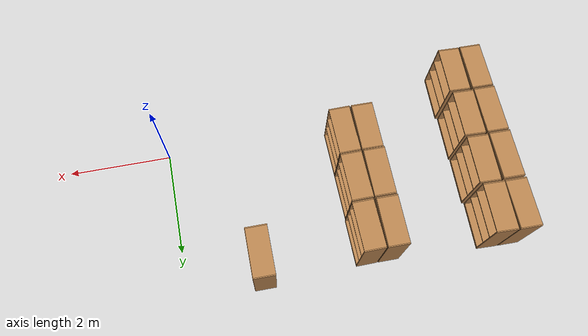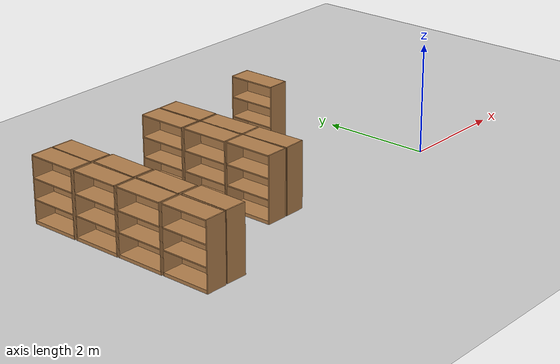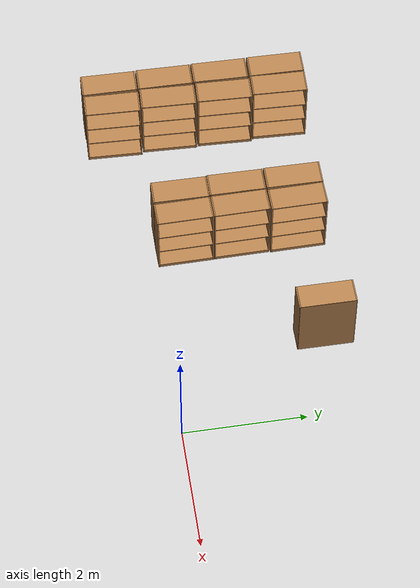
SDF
<sdf version="1.6">
 <world name="default">
  <model name="ground_plane">
   <static>1</static>
   <link name="link">
    <collision name="collision">
     <geometry><plane><normal>0 0 1</normal><size>100 100</size></plane></geometry>
     <surface>
      <contact><collide_bitmask>65535</collide_bitmask></contact>
      <friction><ode><mu>100</mu><mu2>50</mu2></ode></friction>
     </surface>
    </collision>
    <visual name="visual">
     <cast_shadows>0</cast_shadows>
     <geometry><plane><normal>0 0 1</normal><size>100 100</size></plane></geometry>
     <material>
      <script><uri>file://media/materials/scripts/gazebo.material</uri><name>Gazebo/Grey</name></script>
     </material>
    </visual>
   </link>
  </model>
  <model name="bookshelf_clone">
   <static>1</static>
   <link name="link">
    <inertial><mass>1</mass></inertial>
    <collision name="back">
     <pose>0 0.005 0.6 0 -0 0</pose>
     <geometry><box><size>0.9 0.01 1.2</size></box></geometry>
    </collision>
    <visual name="visual1">
     <pose>0 0.005 0.6 0 -0 0</pose>
     <geometry><box><size>0.9 0.01 1.2</size></box></geometry>
     <material>
      <script><uri>file://media/materials/scripts/gazebo.material</uri><name>Gazebo/Wood</name></script>
     </material>
    </visual>
    <collision name="left_side">
     <pose>0.45 -0.195 0.6 0 -0 0</pose>
     <geometry><box><size>0.02 0.4 1.2</size></box></geometry>
    </collision>
    <visual name="visual2">
     <pose>0.45 -0.195 0.6 0 -0 0</pose>
     <geometry><box><size>0.02 0.4 1.2</size></box></geometry>
     <material>
      <script><uri>file://media/materials/scripts/gazebo.material</uri><name>Gazebo/Wood</name></script>
     </material>
    </visual>
    <collision name="right_side">
     <pose>-0.45 -0.195 0.6 0 -0 0</pose>
     <geometry><box><size>0.02 0.4 1.2</size></box></geometry>
    </collision>
    <visual name="visual3">
     <pose>-0.45 -0.195 0.6 0 -0 0</pose>
     <geometry><box><size>0.02 0.4 1.2</size></box></geometry>
     <material>
      <script><uri>file://media/materials/scripts/gazebo.material</uri><name>Gazebo/Wood</name></script>
     </material>
    </visual>
    <collision name="bottom">
     <pose>0 -0.195 0.03 0 -0 0</pose>
     <geometry><box><size>0.88 0.4 0.06</size></box></geometry>
    </collision>
    <visual name="visual4">
     <pose>0 -0.195 0.03 0 -0 0</pose>
     <geometry><box><size>0.88 0.4 0.06</size></box></geometry>
     <material>
      <script><uri>file://media/materials/scripts/gazebo.material</uri><name>Gazebo/Wood</name></script>
     </material>
    </visual>
    <collision name="top">
     <pose>0 -0.195 1.19 0 -0 0</pose>
     <geometry><box><size>0.88 0.4 0.02</size></box></geometry>
    </collision>
    <visual name="visual5">
     <pose>0 -0.195 1.19 0 -0 0</pose>
     <geometry><box><size>0.88 0.4 0.02</size></box></geometry>
     <material>
      <script><uri>file://media/materials/scripts/gazebo.material</uri><name>Gazebo/Wood</name></script>
     </material>
    </visual>
    <collision name="low_shelf">
     <pose>0 -0.195 0.43 0 -0 0</pose>
     <geometry><box><size>0.88 0.4 0.02</size></box></geometry>
    </collision>
    <visual name="visual6">
     <pose>0 -0.195 0.43 0 -0 0</pose>
     <geometry><box><size>0.88 0.4 0.02</size></box></geometry>
     <material>
      <script><uri>file://media/materials/scripts/gazebo.material</uri><name>Gazebo/Wood</name></script>
     </material>
    </visual>
    <collision name="high_shelf">
     <pose>0 -0.195 0.8 0 -0 0</pose>
     <geometry><box><size>0.88 0.4 0.02</size></box></geometry>
    </collision>
    <visual name="visual7">
     <pose>0 -0.195 0.8 0 -0 0</pose>
     <geometry><box><size>0.88 0.4 0.02</size></box></geometry>
     <material>
      <script><uri>file://media/materials/scripts/gazebo.material</uri><name>Gazebo/Wood</name></script>
     </material>
    </visual>
   </link>
   <pose>-6.02073 -0.323633 0 0 0 -1.58271</pose>
  </model>
  <model name="bookshelf_clone_0">
   <static>1</static>
   <link name="link">
    <inertial><mass>1</mass></inertial>
    <collision name="back">
     <pose>0 0.005 0.6 0 -0 0</pose>
     <geometry><box><size>0.9 0.01 1.2</size></box></geometry>
    </collision>
    <visual name="visual1">
     <pose>0 0.005 0.6 0 -0 0</pose>
     <geometry><box><size>0.9 0.01 1.2</size></box></geometry>
     <material>
      <script><uri>file://media/materials/scripts/gazebo.material</uri><name>Gazebo/Wood</name></script>
     </material>
    </visual>
    <collision name="left_side">
     <pose>0.45 -0.195 0.6 0 -0 0</pose>
     <geometry><box><size>0.02 0.4 1.2</size></box></geometry>
    </collision>
    <visual name="visual2">
     <pose>0.45 -0.195 0.6 0 -0 0</pose>
     <geometry><box><size>0.02 0.4 1.2</size></box></geometry>
     <material>
      <script><uri>file://media/materials/scripts/gazebo.material</uri><name>Gazebo/Wood</name></script>
     </material>
    </visual>
    <collision name="right_side">
     <pose>-0.45 -0.195 0.6 0 -0 0</pose>
     <geometry><box><size>0.02 0.4 1.2</size></box></geometry>
    </collision>
    <visual name="visual3">
     <pose>-0.45 -0.195 0.6 0 -0 0</pose>
     <geometry><box><size>0.02 0.4 1.2</size></box></geometry>
     <material>
      <script><uri>file://media/materials/scripts/gazebo.material</uri><name>Gazebo/Wood</name></script>
     </material>
    </visual>
    <collision name="bottom">
     <pose>0 -0.195 0.03 0 -0 0</pose>
     <geometry><box><size>0.88 0.4 0.06</size></box></geometry>
    </collision>
    <visual name="visual4">
     <pose>0 -0.195 0.03 0 -0 0</pose>
     <geometry><box><size>0.88 0.4 0.06</size></box></geometry>
     <material>
      <script><uri>file://media/materials/scripts/gazebo.material</uri><name>Gazebo/Wood</name></script>
     </material>
    </visual>
    <collision name="top">
     <pose>0 -0.195 1.19 0 -0 0</pose>
     <geometry><box><size>0.88 0.4 0.02</size></box></geometry>
    </collision>
    <visual name="visual5">
     <pose>0 -0.195 1.19 0 -0 0</pose>
     <geometry><box><size>0.88 0.4 0.02</size></box></geometry>
     <material>
      <script><uri>file://media/materials/scripts/gazebo.material</uri><name>Gazebo/Wood</name></script>
     </material>
    </visual>
    <collision name="low_shelf">
     <pose>0 -0.195 0.43 0 -0 0</pose>
     <geometry><box><size>0.88 0.4 0.02</size></box></geometry>
    </collision>
    <visual name="visual6">
     <pose>0 -0.195 0.43 0 -0 0</pose>
     <geometry><box><size>0.88 0.4 0.02</size></box></geometry>
     <material>
      <script><uri>file://media/materials/scripts/gazebo.material</uri><name>Gazebo/Wood</name></script>
     </material>
    </visual>
    <collision name="high_shelf">
     <pose>0 -0.195 0.8 0 -0 0</pose>
     <geometry><box><size>0.88 0.4 0.02</size></box></geometry>
    </collision>
    <visual name="visual7">
     <pose>0 -0.195 0.8 0 -0 0</pose>
     <geometry><box><size>0.88 0.4 0.02</size></box></geometry>
     <material>
      <script><uri>file://media/materials/scripts/gazebo.material</uri><name>Gazebo/Wood</name></script>
     </material>
    </visual>
   </link>
   <pose>-6.02068 0.616769 0 0 0 -1.58271</pose>
  </model>
  <model name="bookshelf_clone_1">
   <static>1</static>
   <link name="link">
    <inertial><mass>1</mass></inertial>
    <collision name="back">
     <pose>0 0.005 0.6 0 -0 0</pose>
     <geometry><box><size>0.9 0.01 1.2</size></box></geometry>
    </collision>
    <visual name="visual1">
     <pose>0 0.005 0.6 0 -0 0</pose>
     <geometry><box><size>0.9 0.01 1.2</size></box></geometry>
     <material>
      <script><uri>file://media/materials/scripts/gazebo.material</uri><name>Gazebo/Wood</name></script>
     </material>
    </visual>
    <collision name="left_side">
     <pose>0.45 -0.195 0.6 0 -0 0</pose>
     <geometry><box><size>0.02 0.4 1.2</size></box></geometry>
    </collision>
    <visual name="visual2">
     <pose>0.45 -0.195 0.6 0 -0 0</pose>
     <geometry><box><size>0.02 0.4 1.2</size></box></geometry>
     <material>
      <script><uri>file://media/materials/scripts/gazebo.material</uri><name>Gazebo/Wood</name></script>
     </material>
    </visual>
    <collision name="right_side">
     <pose>-0.45 -0.195 0.6 0 -0 0</pose>
     <geometry><box><size>0.02 0.4 1.2</size></box></geometry>
    </collision>
    <visual name="visual3">
     <pose>-0.45 -0.195 0.6 0 -0 0</pose>
     <geometry><box><size>0.02 0.4 1.2</size></box></geometry>
     <material>
      <script><uri>file://media/materials/scripts/gazebo.material</uri><name>Gazebo/Wood</name></script>
     </material>
    </visual>
    <collision name="bottom">
     <pose>0 -0.195 0.03 0 -0 0</pose>
     <geometry><box><size>0.88 0.4 0.06</size></box></geometry>
    </collision>
    <visual name="visual4">
     <pose>0 -0.195 0.03 0 -0 0</pose>
     <geometry><box><size>0.88 0.4 0.06</size></box></geometry>
     <material>
      <script><uri>file://media/materials/scripts/gazebo.material</uri><name>Gazebo/Wood</name></script>
     </material>
    </visual>
    <collision name="top">
     <pose>0 -0.195 1.19 0 -0 0</pose>
     <geometry><box><size>0.88 0.4 0.02</size></box></geometry>
    </collision>
    <visual name="visual5">
     <pose>0 -0.195 1.19 0 -0 0</pose>
     <geometry><box><size>0.88 0.4 0.02</size></box></geometry>
     <material>
      <script><uri>file://media/materials/scripts/gazebo.material</uri><name>Gazebo/Wood</name></script>
     </material>
    </visual>
    <collision name="low_shelf">
     <pose>0 -0.195 0.43 0 -0 0</pose>
     <geometry><box><size>0.88 0.4 0.02</size></box></geometry>
    </collision>
    <visual name="visual6">
     <pose>0 -0.195 0.43 0 -0 0</pose>
     <geometry><box><size>0.88 0.4 0.02</size></box></geometry>
     <material>
      <script><uri>file://media/materials/scripts/gazebo.material</uri><name>Gazebo/Wood</name></script>
     </material>
    </visual>
    <collision name="high_shelf">
     <pose>0 -0.195 0.8 0 -0 0</pose>
     <geometry><box><size>0.88 0.4 0.02</size></box></geometry>
    </collision>
    <visual name="visual7">
     <pose>0 -0.195 0.8 0 -0 0</pose>
     <geometry><box><size>0.88 0.4 0.02</size></box></geometry>
     <material>
      <script><uri>file://media/materials/scripts/gazebo.material</uri><name>Gazebo/Wood</name></script>
     </material>
    </visual>
   </link>
   <pose>-6.01944 1.55519 0 0 0 -1.58271</pose>
  </model>
  <model name="bookshelf_clone_2">
   <static>1</static>
   <link name="link">
    <inertial><mass>1</mass></inertial>
    <collision name="back">
     <pose>0 0.005 0.6 0 -0 0</pose>
     <geometry><box><size>0.9 0.01 1.2</size></box></geometry>
    </collision>
    <visual name="visual1">
     <pose>0 0.005 0.6 0 -0 0</pose>
     <geometry><box><size>0.9 0.01 1.2</size></box></geometry>
     <material>
      <script><uri>file://media/materials/scripts/gazebo.material</uri><name>Gazebo/Wood</name></script>
     </material>
    </visual>
    <collision name="left_side">
     <pose>0.45 -0.195 0.6 0 -0 0</pose>
     <geometry><box><size>0.02 0.4 1.2</size></box></geometry>
    </collision>
    <visual name="visual2">
     <pose>0.45 -0.195 0.6 0 -0 0</pose>
     <geometry><box><size>0.02 0.4 1.2</size></box></geometry>
     <material>
      <script><uri>file://media/materials/scripts/gazebo.material</uri><name>Gazebo/Wood</name></script>
     </material>
    </visual>
    <collision name="right_side">
     <pose>-0.45 -0.195 0.6 0 -0 0</pose>
     <geometry><box><size>0.02 0.4 1.2</size></box></geometry>
    </collision>
    <visual name="visual3">
     <pose>-0.45 -0.195 0.6 0 -0 0</pose>
     <geometry><box><size>0.02 0.4 1.2</size></box></geometry>
     <material>
      <script><uri>file://media/materials/scripts/gazebo.material</uri><name>Gazebo/Wood</name></script>
     </material>
    </visual>
    <collision name="bottom">
     <pose>0 -0.195 0.03 0 -0 0</pose>
     <geometry><box><size>0.88 0.4 0.06</size></box></geometry>
    </collision>
    <visual name="visual4">
     <pose>0 -0.195 0.03 0 -0 0</pose>
     <geometry><box><size>0.88 0.4 0.06</size></box></geometry>
     <material>
      <script><uri>file://media/materials/scripts/gazebo.material</uri><name>Gazebo/Wood</name></script>
     </material>
    </visual>
    <collision name="top">
     <pose>0 -0.195 1.19 0 -0 0</pose>
     <geometry><box><size>0.88 0.4 0.02</size></box></geometry>
    </collision>
    <visual name="visual5">
     <pose>0 -0.195 1.19 0 -0 0</pose>
     <geometry><box><size>0.88 0.4 0.02</size></box></geometry>
     <material>
      <script><uri>file://media/materials/scripts/gazebo.material</uri><name>Gazebo/Wood</name></script>
     </material>
    </visual>
    <collision name="low_shelf">
     <pose>0 -0.195 0.43 0 -0 0</pose>
     <geometry><box><size>0.88 0.4 0.02</size></box></geometry>
    </collision>
    <visual name="visual6">
     <pose>0 -0.195 0.43 0 -0 0</pose>
     <geometry><box><size>0.88 0.4 0.02</size></box></geometry>
     <material>
      <script><uri>file://media/materials/scripts/gazebo.material</uri><name>Gazebo/Wood</name></script>
     </material>
    </visual>
    <collision name="high_shelf">
     <pose>0 -0.195 0.8 0 -0 0</pose>
     <geometry><box><size>0.88 0.4 0.02</size></box></geometry>
    </collision>
    <visual name="visual7">
     <pose>0 -0.195 0.8 0 -0 0</pose>
     <geometry><box><size>0.88 0.4 0.02</size></box></geometry>
     <material>
      <script><uri>file://media/materials/scripts/gazebo.material</uri><name>Gazebo/Wood</name></script>
     </material>
    </visual>
   </link>
   <pose>-6.01655 2.50629 0 0 0 -1.58271</pose>
  </model>
  <model name="bookshelf_clone_10">
   <static>1</static>
   <link name="link">
    <inertial><mass>1</mass></inertial>
    <collision name="back">
     <pose>0 0.005 0.6 0 -0 0</pose>
     <geometry><box><size>0.9 0.01 1.2</size></box></geometry>
    </collision>
    <visual name="visual1">
     <pose>0 0.005 0.6 0 -0 0</pose>
     <geometry><box><size>0.9 0.01 1.2</size></box></geometry>
     <material>
      <script><uri>file://media/materials/scripts/gazebo.material</uri><name>Gazebo/Wood</name></script>
     </material>
    </visual>
    <collision name="left_side">
     <pose>0.45 -0.195 0.6 0 -0 0</pose>
     <geometry><box><size>0.02 0.4 1.2</size></box></geometry>
    </collision>
    <visual name="visual2">
     <pose>0.45 -0.195 0.6 0 -0 0</pose>
     <geometry><box><size>0.02 0.4 1.2</size></box></geometry>
     <material>
      <script><uri>file://media/materials/scripts/gazebo.material</uri><name>Gazebo/Wood</name></script>
     </material>
    </visual>
    <collision name="right_side">
     <pose>-0.45 -0.195 0.6 0 -0 0</pose>
     <geometry><box><size>0.02 0.4 1.2</size></box></geometry>
    </collision>
    <visual name="visual3">
     <pose>-0.45 -0.195 0.6 0 -0 0</pose>
     <geometry><box><size>0.02 0.4 1.2</size></box></geometry>
     <material>
      <script><uri>file://media/materials/scripts/gazebo.material</uri><name>Gazebo/Wood</name></script>
     </material>
    </visual>
    <collision name="bottom">
     <pose>0 -0.195 0.03 0 -0 0</pose>
     <geometry><box><size>0.88 0.4 0.06</size></box></geometry>
    </collision>
    <visual name="visual4">
     <pose>0 -0.195 0.03 0 -0 0</pose>
     <geometry><box><size>0.88 0.4 0.06</size></box></geometry>
     <material>
      <script><uri>file://media/materials/scripts/gazebo.material</uri><name>Gazebo/Wood</name></script>
     </material>
    </visual>
    <collision name="top">
     <pose>0 -0.195 1.19 0 -0 0</pose>
     <geometry><box><size>0.88 0.4 0.02</size></box></geometry>
    </collision>
    <visual name="visual5">
     <pose>0 -0.195 1.19 0 -0 0</pose>
     <geometry><box><size>0.88 0.4 0.02</size></box></geometry>
     <material>
      <script><uri>file://media/materials/scripts/gazebo.material</uri><name>Gazebo/Wood</name></script>
     </material>
    </visual>
    <collision name="low_shelf">
     <pose>0 -0.195 0.43 0 -0 0</pose>
     <geometry><box><size>0.88 0.4 0.02</size></box></geometry>
    </collision>
    <visual name="visual6">
     <pose>0 -0.195 0.43 0 -0 0</pose>
     <geometry><box><size>0.88 0.4 0.02</size></box></geometry>
     <material>
      <script><uri>file://media/materials/scripts/gazebo.material</uri><name>Gazebo/Wood</name></script>
     </material>
    </visual>
    <collision name="high_shelf">
     <pose>0 -0.195 0.8 0 -0 0</pose>
     <geometry><box><size>0.88 0.4 0.02</size></box></geometry>
    </collision>
    <visual name="visual7">
     <pose>0 -0.195 0.8 0 -0 0</pose>
     <geometry><box><size>0.88 0.4 0.02</size></box></geometry>
     <material>
      <script><uri>file://media/materials/scripts/gazebo.material</uri><name>Gazebo/Wood</name></script>
     </material>
    </visual>
   </link>
   <pose>-1.27153 2.51891 0 0 0 -1.57178</pose>
  </model>
  <model name="bookshelf_clone_15">
   <static>1</static>
   <link name="link">
    <inertial><mass>1</mass></inertial>
    <collision name="back">
     <pose>0 0.005 0.6 0 -0 0</pose>
     <geometry><box><size>0.9 0.01 1.2</size></box></geometry>
    </collision>
    <visual name="visual1">
     <pose>0 0.005 0.6 0 -0 0</pose>
     <geometry><box><size>0.9 0.01 1.2</size></box></geometry>
     <material>
      <script><uri>file://media/materials/scripts/gazebo.material</uri><name>Gazebo/Wood</name></script>
     </material>
    </visual>
    <collision name="left_side">
     <pose>0.45 -0.195 0.6 0 -0 0</pose>
     <geometry><box><size>0.02 0.4 1.2</size></box></geometry>
    </collision>
    <visual name="visual2">
     <pose>0.45 -0.195 0.6 0 -0 0</pose>
     <geometry><box><size>0.02 0.4 1.2</size></box></geometry>
     <material>
      <script><uri>file://media/materials/scripts/gazebo.material</uri><name>Gazebo/Wood</name></script>
     </material>
    </visual>
    <collision name="right_side">
     <pose>-0.45 -0.195 0.6 0 -0 0</pose>
     <geometry><box><size>0.02 0.4 1.2</size></box></geometry>
    </collision>
    <visual name="visual3">
     <pose>-0.45 -0.195 0.6 0 -0 0</pose>
     <geometry><box><size>0.02 0.4 1.2</size></box></geometry>
     <material>
      <script><uri>file://media/materials/scripts/gazebo.material</uri><name>Gazebo/Wood</name></script>
     </material>
    </visual>
    <collision name="bottom">
     <pose>0 -0.195 0.03 0 -0 0</pose>
     <geometry><box><size>0.88 0.4 0.06</size></box></geometry>
    </collision>
    <visual name="visual4">
     <pose>0 -0.195 0.03 0 -0 0</pose>
     <geometry><box><size>0.88 0.4 0.06</size></box></geometry>
     <material>
      <script><uri>file://media/materials/scripts/gazebo.material</uri><name>Gazebo/Wood</name></script>
     </material>
    </visual>
    <collision name="top">
     <pose>0 -0.195 1.19 0 -0 0</pose>
     <geometry><box><size>0.88 0.4 0.02</size></box></geometry>
    </collision>
    <visual name="visual5">
     <pose>0 -0.195 1.19 0 -0 0</pose>
     <geometry><box><size>0.88 0.4 0.02</size></box></geometry>
     <material>
      <script><uri>file://media/materials/scripts/gazebo.material</uri><name>Gazebo/Wood</name></script>
     </material>
    </visual>
    <collision name="low_shelf">
     <pose>0 -0.195 0.43 0 -0 0</pose>
     <geometry><box><size>0.88 0.4 0.02</size></box></geometry>
    </collision>
    <visual name="visual6">
     <pose>0 -0.195 0.43 0 -0 0</pose>
     <geometry><box><size>0.88 0.4 0.02</size></box></geometry>
     <material>
      <script><uri>file://media/materials/scripts/gazebo.material</uri><name>Gazebo/Wood</name></script>
     </material>
    </visual>
    <collision name="high_shelf">
     <pose>0 -0.195 0.8 0 -0 0</pose>
     <geometry><box><size>0.88 0.4 0.02</size></box></geometry>
    </collision>
    <visual name="visual7">
     <pose>0 -0.195 0.8 0 -0 0</pose>
     <geometry><box><size>0.88 0.4 0.02</size></box></geometry>
     <material>
      <script><uri>file://media/materials/scripts/gazebo.material</uri><name>Gazebo/Wood</name></script>
     </material>
    </visual>
   </link>
   <pose>-5.96923 -0.316108 0 0 -0 1.53734</pose>
  </model>
  <model name="bookshelf_clone_16">
   <static>1</static>
   <link name="link">
    <inertial><mass>1</mass></inertial>
    <collision name="back">
     <pose>0 0.005 0.6 0 -0 0</pose>
     <geometry><box><size>0.9 0.01 1.2</size></box></geometry>
    </collision>
    <visual name="visual1">
     <pose>0 0.005 0.6 0 -0 0</pose>
     <geometry><box><size>0.9 0.01 1.2</size></box></geometry>
     <material>
      <script><uri>file://media/materials/scripts/gazebo.material</uri><name>Gazebo/Wood</name></script>
     </material>
    </visual>
    <collision name="left_side">
     <pose>0.45 -0.195 0.6 0 -0 0</pose>
     <geometry><box><size>0.02 0.4 1.2</size></box></geometry>
    </collision>
    <visual name="visual2">
     <pose>0.45 -0.195 0.6 0 -0 0</pose>
     <geometry><box><size>0.02 0.4 1.2</size></box></geometry>
     <material>
      <script><uri>file://media/materials/scripts/gazebo.material</uri><name>Gazebo/Wood</name></script>
     </material>
    </visual>
    <collision name="right_side">
     <pose>-0.45 -0.195 0.6 0 -0 0</pose>
     <geometry><box><size>0.02 0.4 1.2</size></box></geometry>
    </collision>
    <visual name="visual3">
     <pose>-0.45 -0.195 0.6 0 -0 0</pose>
     <geometry><box><size>0.02 0.4 1.2</size></box></geometry>
     <material>
      <script><uri>file://media/materials/scripts/gazebo.material</uri><name>Gazebo/Wood</name></script>
     </material>
    </visual>
    <collision name="bottom">
     <pose>0 -0.195 0.03 0 -0 0</pose>
     <geometry><box><size>0.88 0.4 0.06</size></box></geometry>
    </collision>
    <visual name="visual4">
     <pose>0 -0.195 0.03 0 -0 0</pose>
     <geometry><box><size>0.88 0.4 0.06</size></box></geometry>
     <material>
      <script><uri>file://media/materials/scripts/gazebo.material</uri><name>Gazebo/Wood</name></script>
     </material>
    </visual>
    <collision name="top">
     <pose>0 -0.195 1.19 0 -0 0</pose>
     <geometry><box><size>0.88 0.4 0.02</size></box></geometry>
    </collision>
    <visual name="visual5">
     <pose>0 -0.195 1.19 0 -0 0</pose>
     <geometry><box><size>0.88 0.4 0.02</size></box></geometry>
     <material>
      <script><uri>file://media/materials/scripts/gazebo.material</uri><name>Gazebo/Wood</name></script>
     </material>
    </visual>
    <collision name="low_shelf">
     <pose>0 -0.195 0.43 0 -0 0</pose>
     <geometry><box><size>0.88 0.4 0.02</size></box></geometry>
    </collision>
    <visual name="visual6">
     <pose>0 -0.195 0.43 0 -0 0</pose>
     <geometry><box><size>0.88 0.4 0.02</size></box></geometry>
     <material>
      <script><uri>file://media/materials/scripts/gazebo.material</uri><name>Gazebo/Wood</name></script>
     </material>
    </visual>
    <collision name="high_shelf">
     <pose>0 -0.195 0.8 0 -0 0</pose>
     <geometry><box><size>0.88 0.4 0.02</size></box></geometry>
    </collision>
    <visual name="visual7">
     <pose>0 -0.195 0.8 0 -0 0</pose>
     <geometry><box><size>0.88 0.4 0.02</size></box></geometry>
     <material>
      <script><uri>file://media/materials/scripts/gazebo.material</uri><name>Gazebo/Wood</name></script>
     </material>
    </visual>
   </link>
   <pose>-5.98268 0.626425 0 0 -0 1.53734</pose>
  </model>
  <model name="bookshelf_clone_17">
   <static>1</static>
   <link name="link">
    <inertial><mass>1</mass></inertial>
    <collision name="back">
     <pose>0 0.005 0.6 0 -0 0</pose>
     <geometry><box><size>0.9 0.01 1.2</size></box></geometry>
    </collision>
    <visual name="visual1">
     <pose>0 0.005 0.6 0 -0 0</pose>
     <geometry><box><size>0.9 0.01 1.2</size></box></geometry>
     <material>
      <script><uri>file://media/materials/scripts/gazebo.material</uri><name>Gazebo/Wood</name></script>
     </material>
    </visual>
    <collision name="left_side">
     <pose>0.45 -0.195 0.6 0 -0 0</pose>
     <geometry><box><size>0.02 0.4 1.2</size></box></geometry>
    </collision>
    <visual name="visual2">
     <pose>0.45 -0.195 0.6 0 -0 0</pose>
     <geometry><box><size>0.02 0.4 1.2</size></box></geometry>
     <material>
      <script><uri>file://media/materials/scripts/gazebo.material</uri><name>Gazebo/Wood</name></script>
     </material>
    </visual>
    <collision name="right_side">
     <pose>-0.45 -0.195 0.6 0 -0 0</pose>
     <geometry><box><size>0.02 0.4 1.2</size></box></geometry>
    </collision>
    <visual name="visual3">
     <pose>-0.45 -0.195 0.6 0 -0 0</pose>
     <geometry><box><size>0.02 0.4 1.2</size></box></geometry>
     <material>
      <script><uri>file://media/materials/scripts/gazebo.material</uri><name>Gazebo/Wood</name></script>
     </material>
    </visual>
    <collision name="bottom">
     <pose>0 -0.195 0.03 0 -0 0</pose>
     <geometry><box><size>0.88 0.4 0.06</size></box></geometry>
    </collision>
    <visual name="visual4">
     <pose>0 -0.195 0.03 0 -0 0</pose>
     <geometry><box><size>0.88 0.4 0.06</size></box></geometry>
     <material>
      <script><uri>file://media/materials/scripts/gazebo.material</uri><name>Gazebo/Wood</name></script>
     </material>
    </visual>
    <collision name="top">
     <pose>0 -0.195 1.19 0 -0 0</pose>
     <geometry><box><size>0.88 0.4 0.02</size></box></geometry>
    </collision>
    <visual name="visual5">
     <pose>0 -0.195 1.19 0 -0 0</pose>
     <geometry><box><size>0.88 0.4 0.02</size></box></geometry>
     <material>
      <script><uri>file://media/materials/scripts/gazebo.material</uri><name>Gazebo/Wood</name></script>
     </material>
    </visual>
    <collision name="low_shelf">
     <pose>0 -0.195 0.43 0 -0 0</pose>
     <geometry><box><size>0.88 0.4 0.02</size></box></geometry>
    </collision>
    <visual name="visual6">
     <pose>0 -0.195 0.43 0 -0 0</pose>
     <geometry><box><size>0.88 0.4 0.02</size></box></geometry>
     <material>
      <script><uri>file://media/materials/scripts/gazebo.material</uri><name>Gazebo/Wood</name></script>
     </material>
    </visual>
    <collision name="high_shelf">
     <pose>0 -0.195 0.8 0 -0 0</pose>
     <geometry><box><size>0.88 0.4 0.02</size></box></geometry>
    </collision>
    <visual name="visual7">
     <pose>0 -0.195 0.8 0 -0 0</pose>
     <geometry><box><size>0.88 0.4 0.02</size></box></geometry>
     <material>
      <script><uri>file://media/materials/scripts/gazebo.material</uri><name>Gazebo/Wood</name></script>
     </material>
    </visual>
   </link>
   <pose>-5.97352 1.57017 0 0 -0 1.53734</pose>
  </model>
  <model name="bookshelf_clone_18">
   <static>1</static>
   <link name="link">
    <inertial><mass>1</mass></inertial>
    <collision name="back">
     <pose>0 0.005 0.6 0 -0 0</pose>
     <geometry><box><size>0.9 0.01 1.2</size></box></geometry>
    </collision>
    <visual name="visual1">
     <pose>0 0.005 0.6 0 -0 0</pose>
     <geometry><box><size>0.9 0.01 1.2</size></box></geometry>
     <material>
      <script><uri>file://media/materials/scripts/gazebo.material</uri><name>Gazebo/Wood</name></script>
     </material>
    </visual>
    <collision name="left_side">
     <pose>0.45 -0.195 0.6 0 -0 0</pose>
     <geometry><box><size>0.02 0.4 1.2</size></box></geometry>
    </collision>
    <visual name="visual2">
     <pose>0.45 -0.195 0.6 0 -0 0</pose>
     <geometry><box><size>0.02 0.4 1.2</size></box></geometry>
     <material>
      <script><uri>file://media/materials/scripts/gazebo.material</uri><name>Gazebo/Wood</name></script>
     </material>
    </visual>
    <collision name="right_side">
     <pose>-0.45 -0.195 0.6 0 -0 0</pose>
     <geometry><box><size>0.02 0.4 1.2</size></box></geometry>
    </collision>
    <visual name="visual3">
     <pose>-0.45 -0.195 0.6 0 -0 0</pose>
     <geometry><box><size>0.02 0.4 1.2</size></box></geometry>
     <material>
      <script><uri>file://media/materials/scripts/gazebo.material</uri><name>Gazebo/Wood</name></script>
     </material>
    </visual>
    <collision name="bottom">
     <pose>0 -0.195 0.03 0 -0 0</pose>
     <geometry><box><size>0.88 0.4 0.06</size></box></geometry>
    </collision>
    <visual name="visual4">
     <pose>0 -0.195 0.03 0 -0 0</pose>
     <geometry><box><size>0.88 0.4 0.06</size></box></geometry>
     <material>
      <script><uri>file://media/materials/scripts/gazebo.material</uri><name>Gazebo/Wood</name></script>
     </material>
    </visual>
    <collision name="top">
     <pose>0 -0.195 1.19 0 -0 0</pose>
     <geometry><box><size>0.88 0.4 0.02</size></box></geometry>
    </collision>
    <visual name="visual5">
     <pose>0 -0.195 1.19 0 -0 0</pose>
     <geometry><box><size>0.88 0.4 0.02</size></box></geometry>
     <material>
      <script><uri>file://media/materials/scripts/gazebo.material</uri><name>Gazebo/Wood</name></script>
     </material>
    </visual>
    <collision name="low_shelf">
     <pose>0 -0.195 0.43 0 -0 0</pose>
     <geometry><box><size>0.88 0.4 0.02</size></box></geometry>
    </collision>
    <visual name="visual6">
     <pose>0 -0.195 0.43 0 -0 0</pose>
     <geometry><box><size>0.88 0.4 0.02</size></box></geometry>
     <material>
      <script><uri>file://media/materials/scripts/gazebo.material</uri><name>Gazebo/Wood</name></script>
     </material>
    </visual>
    <collision name="high_shelf">
     <pose>0 -0.195 0.8 0 -0 0</pose>
     <geometry><box><size>0.88 0.4 0.02</size></box></geometry>
    </collision>
    <visual name="visual7">
     <pose>0 -0.195 0.8 0 -0 0</pose>
     <geometry><box><size>0.88 0.4 0.02</size></box></geometry>
     <material>
      <script><uri>file://media/materials/scripts/gazebo.material</uri><name>Gazebo/Wood</name></script>
     </material>
    </visual>
   </link>
   <pose>-5.98561 2.50508 0 0 -0 1.53734</pose>
  </model>
  <model name="bookshelf_clone_24">
   <static>1</static>
   <link name="link">
    <inertial><mass>1</mass></inertial>
    <collision name="back">
     <pose>0 0.005 0.6 0 -0 0</pose>
     <geometry><box><size>0.9 0.01 1.2</size></box></geometry>
    </collision>
    <visual name="visual1">
     <pose>0 0.005 0.6 0 -0 0</pose>
     <geometry><box><size>0.9 0.01 1.2</size></box></geometry>
     <material>
      <script><uri>file://media/materials/scripts/gazebo.material</uri><name>Gazebo/Wood</name></script>
     </material>
    </visual>
    <collision name="left_side">
     <pose>0.45 -0.195 0.6 0 -0 0</pose>
     <geometry><box><size>0.02 0.4 1.2</size></box></geometry>
    </collision>
    <visual name="visual2">
     <pose>0.45 -0.195 0.6 0 -0 0</pose>
     <geometry><box><size>0.02 0.4 1.2</size></box></geometry>
     <material>
      <script><uri>file://media/materials/scripts/gazebo.material</uri><name>Gazebo/Wood</name></script>
     </material>
    </visual>
    <collision name="right_side">
     <pose>-0.45 -0.195 0.6 0 -0 0</pose>
     <geometry><box><size>0.02 0.4 1.2</size></box></geometry>
    </collision>
    <visual name="visual3">
     <pose>-0.45 -0.195 0.6 0 -0 0</pose>
     <geometry><box><size>0.02 0.4 1.2</size></box></geometry>
     <material>
      <script><uri>file://media/materials/scripts/gazebo.material</uri><name>Gazebo/Wood</name></script>
     </material>
    </visual>
    <collision name="bottom">
     <pose>0 -0.195 0.03 0 -0 0</pose>
     <geometry><box><size>0.88 0.4 0.06</size></box></geometry>
    </collision>
    <visual name="visual4">
     <pose>0 -0.195 0.03 0 -0 0</pose>
     <geometry><box><size>0.88 0.4 0.06</size></box></geometry>
     <material>
      <script><uri>file://media/materials/scripts/gazebo.material</uri><name>Gazebo/Wood</name></script>
     </material>
    </visual>
    <collision name="top">
     <pose>0 -0.195 1.19 0 -0 0</pose>
     <geometry><box><size>0.88 0.4 0.02</size></box></geometry>
    </collision>
    <visual name="visual5">
     <pose>0 -0.195 1.19 0 -0 0</pose>
     <geometry><box><size>0.88 0.4 0.02</size></box></geometry>
     <material>
      <script><uri>file://media/materials/scripts/gazebo.material</uri><name>Gazebo/Wood</name></script>
     </material>
    </visual>
    <collision name="low_shelf">
     <pose>0 -0.195 0.43 0 -0 0</pose>
     <geometry><box><size>0.88 0.4 0.02</size></box></geometry>
    </collision>
    <visual name="visual6">
     <pose>0 -0.195 0.43 0 -0 0</pose>
     <geometry><box><size>0.88 0.4 0.02</size></box></geometry>
     <material>
      <script><uri>file://media/materials/scripts/gazebo.material</uri><name>Gazebo/Wood</name></script>
     </material>
    </visual>
    <collision name="high_shelf">
     <pose>0 -0.195 0.8 0 -0 0</pose>
     <geometry><box><size>0.88 0.4 0.02</size></box></geometry>
    </collision>
    <visual name="visual7">
     <pose>0 -0.195 0.8 0 -0 0</pose>
     <geometry><box><size>0.88 0.4 0.02</size></box></geometry>
     <material>
      <script><uri>file://media/materials/scripts/gazebo.material</uri><name>Gazebo/Wood</name></script>
     </material>
    </visual>
   </link>
   <pose>-3.60037 0.538115 0 0 -0 1.58591</pose>
  </model>
  <model name="bookshelf_clone_25">
   <static>1</static>
   <link name="link">
    <inertial><mass>1</mass></inertial>
    <collision name="back">
     <pose>0 0.005 0.6 0 -0 0</pose>
     <geometry><box><size>0.9 0.01 1.2</size></box></geometry>
    </collision>
    <visual name="visual1">
     <pose>0 0.005 0.6 0 -0 0</pose>
     <geometry><box><size>0.9 0.01 1.2</size></box></geometry>
     <material>
      <script><uri>file://media/materials/scripts/gazebo.material</uri><name>Gazebo/Wood</name></script>
     </material>
    </visual>
    <collision name="left_side">
     <pose>0.45 -0.195 0.6 0 -0 0</pose>
     <geometry><box><size>0.02 0.4 1.2</size></box></geometry>
    </collision>
    <visual name="visual2">
     <pose>0.45 -0.195 0.6 0 -0 0</pose>
     <geometry><box><size>0.02 0.4 1.2</size></box></geometry>
     <material>
      <script><uri>file://media/materials/scripts/gazebo.material</uri><name>Gazebo/Wood</name></script>
     </material>
    </visual>
    <collision name="right_side">
     <pose>-0.45 -0.195 0.6 0 -0 0</pose>
     <geometry><box><size>0.02 0.4 1.2</size></box></geometry>
    </collision>
    <visual name="visual3">
     <pose>-0.45 -0.195 0.6 0 -0 0</pose>
     <geometry><box><size>0.02 0.4 1.2</size></box></geometry>
     <material>
      <script><uri>file://media/materials/scripts/gazebo.material</uri><name>Gazebo/Wood</name></script>
     </material>
    </visual>
    <collision name="bottom">
     <pose>0 -0.195 0.03 0 -0 0</pose>
     <geometry><box><size>0.88 0.4 0.06</size></box></geometry>
    </collision>
    <visual name="visual4">
     <pose>0 -0.195 0.03 0 -0 0</pose>
     <geometry><box><size>0.88 0.4 0.06</size></box></geometry>
     <material>
      <script><uri>file://media/materials/scripts/gazebo.material</uri><name>Gazebo/Wood</name></script>
     </material>
    </visual>
    <collision name="top">
     <pose>0 -0.195 1.19 0 -0 0</pose>
     <geometry><box><size>0.88 0.4 0.02</size></box></geometry>
    </collision>
    <visual name="visual5">
     <pose>0 -0.195 1.19 0 -0 0</pose>
     <geometry><box><size>0.88 0.4 0.02</size></box></geometry>
     <material>
      <script><uri>file://media/materials/scripts/gazebo.material</uri><name>Gazebo/Wood</name></script>
     </material>
    </visual>
    <collision name="low_shelf">
     <pose>0 -0.195 0.43 0 -0 0</pose>
     <geometry><box><size>0.88 0.4 0.02</size></box></geometry>
    </collision>
    <visual name="visual6">
     <pose>0 -0.195 0.43 0 -0 0</pose>
     <geometry><box><size>0.88 0.4 0.02</size></box></geometry>
     <material>
      <script><uri>file://media/materials/scripts/gazebo.material</uri><name>Gazebo/Wood</name></script>
     </material>
    </visual>
    <collision name="high_shelf">
     <pose>0 -0.195 0.8 0 -0 0</pose>
     <geometry><box><size>0.88 0.4 0.02</size></box></geometry>
    </collision>
    <visual name="visual7">
     <pose>0 -0.195 0.8 0 -0 0</pose>
     <geometry><box><size>0.88 0.4 0.02</size></box></geometry>
     <material>
      <script><uri>file://media/materials/scripts/gazebo.material</uri><name>Gazebo/Wood</name></script>
     </material>
    </visual>
   </link>
   <pose>-3.61581 1.46594 0 0 -0 1.58591</pose>
  </model>
  <model name="bookshelf_clone_26">
   <static>1</static>
   <link name="link">
    <inertial><mass>1</mass></inertial>
    <collision name="back">
     <pose>0 0.005 0.6 0 -0 0</pose>
     <geometry><box><size>0.9 0.01 1.2</size></box></geometry>
    </collision>
    <visual name="visual1">
     <pose>0 0.005 0.6 0 -0 0</pose>
     <geometry><box><size>0.9 0.01 1.2</size></box></geometry>
     <material>
      <script><uri>file://media/materials/scripts/gazebo.material</uri><name>Gazebo/Wood</name></script>
     </material>
    </visual>
    <collision name="left_side">
     <pose>0.45 -0.195 0.6 0 -0 0</pose>
     <geometry><box><size>0.02 0.4 1.2</size></box></geometry>
    </collision>
    <visual name="visual2">
     <pose>0.45 -0.195 0.6 0 -0 0</pose>
     <geometry><box><size>0.02 0.4 1.2</size></box></geometry>
     <material>
      <script><uri>file://media/materials/scripts/gazebo.material</uri><name>Gazebo/Wood</name></script>
     </material>
    </visual>
    <collision name="right_side">
     <pose>-0.45 -0.195 0.6 0 -0 0</pose>
     <geometry><box><size>0.02 0.4 1.2</size></box></geometry>
    </collision>
    <visual name="visual3">
     <pose>-0.45 -0.195 0.6 0 -0 0</pose>
     <geometry><box><size>0.02 0.4 1.2</size></box></geometry>
     <material>
      <script><uri>file://media/materials/scripts/gazebo.material</uri><name>Gazebo/Wood</name></script>
     </material>
    </visual>
    <collision name="bottom">
     <pose>0 -0.195 0.03 0 -0 0</pose>
     <geometry><box><size>0.88 0.4 0.06</size></box></geometry>
    </collision>
    <visual name="visual4">
     <pose>0 -0.195 0.03 0 -0 0</pose>
     <geometry><box><size>0.88 0.4 0.06</size></box></geometry>
     <material>
      <script><uri>file://media/materials/scripts/gazebo.material</uri><name>Gazebo/Wood</name></script>
     </material>
    </visual>
    <collision name="top">
     <pose>0 -0.195 1.19 0 -0 0</pose>
     <geometry><box><size>0.88 0.4 0.02</size></box></geometry>
    </collision>
    <visual name="visual5">
     <pose>0 -0.195 1.19 0 -0 0</pose>
     <geometry><box><size>0.88 0.4 0.02</size></box></geometry>
     <material>
      <script><uri>file://media/materials/scripts/gazebo.material</uri><name>Gazebo/Wood</name></script>
     </material>
    </visual>
    <collision name="low_shelf">
     <pose>0 -0.195 0.43 0 -0 0</pose>
     <geometry><box><size>0.88 0.4 0.02</size></box></geometry>
    </collision>
    <visual name="visual6">
     <pose>0 -0.195 0.43 0 -0 0</pose>
     <geometry><box><size>0.88 0.4 0.02</size></box></geometry>
     <material>
      <script><uri>file://media/materials/scripts/gazebo.material</uri><name>Gazebo/Wood</name></script>
     </material>
    </visual>
    <collision name="high_shelf">
     <pose>0 -0.195 0.8 0 -0 0</pose>
     <geometry><box><size>0.88 0.4 0.02</size></box></geometry>
    </collision>
    <visual name="visual7">
     <pose>0 -0.195 0.8 0 -0 0</pose>
     <geometry><box><size>0.88 0.4 0.02</size></box></geometry>
     <material>
      <script><uri>file://media/materials/scripts/gazebo.material</uri><name>Gazebo/Wood</name></script>
     </material>
    </visual>
   </link>
   <pose>-3.61658 2.40253 0 0 -0 1.58591</pose>
  </model>
  <model name="bookshelf_clone_32">
   <static>1</static>
   <link name="link">
    <inertial><mass>1</mass></inertial>
    <collision name="back">
     <pose>0 0.005 0.6 0 -0 0</pose>
     <geometry><box><size>0.9 0.01 1.2</size></box></geometry>
    </collision>
    <visual name="visual1">
     <pose>0 0.005 0.6 0 -0 0</pose>
     <geometry><box><size>0.9 0.01 1.2</size></box></geometry>
     <material>
      <script><uri>file://media/materials/scripts/gazebo.material</uri><name>Gazebo/Wood</name></script>
     </material>
    </visual>
    <collision name="left_side">
     <pose>0.45 -0.195 0.6 0 -0 0</pose>
     <geometry><box><size>0.02 0.4 1.2</size></box></geometry>
    </collision>
    <visual name="visual2">
     <pose>0.45 -0.195 0.6 0 -0 0</pose>
     <geometry><box><size>0.02 0.4 1.2</size></box></geometry>
     <material>
      <script><uri>file://media/materials/scripts/gazebo.material</uri><name>Gazebo/Wood</name></script>
     </material>
    </visual>
    <collision name="right_side">
     <pose>-0.45 -0.195 0.6 0 -0 0</pose>
     <geometry><box><size>0.02 0.4 1.2</size></box></geometry>
    </collision>
    <visual name="visual3">
     <pose>-0.45 -0.195 0.6 0 -0 0</pose>
     <geometry><box><size>0.02 0.4 1.2</size></box></geometry>
     <material>
      <script><uri>file://media/materials/scripts/gazebo.material</uri><name>Gazebo/Wood</name></script>
     </material>
    </visual>
    <collision name="bottom">
     <pose>0 -0.195 0.03 0 -0 0</pose>
     <geometry><box><size>0.88 0.4 0.06</size></box></geometry>
    </collision>
    <visual name="visual4">
     <pose>0 -0.195 0.03 0 -0 0</pose>
     <geometry><box><size>0.88 0.4 0.06</size></box></geometry>
     <material>
      <script><uri>file://media/materials/scripts/gazebo.material</uri><name>Gazebo/Wood</name></script>
     </material>
    </visual>
    <collision name="top">
     <pose>0 -0.195 1.19 0 -0 0</pose>
     <geometry><box><size>0.88 0.4 0.02</size></box></geometry>
    </collision>
    <visual name="visual5">
     <pose>0 -0.195 1.19 0 -0 0</pose>
     <geometry><box><size>0.88 0.4 0.02</size></box></geometry>
     <material>
      <script><uri>file://media/materials/scripts/gazebo.material</uri><name>Gazebo/Wood</name></script>
     </material>
    </visual>
    <collision name="low_shelf">
     <pose>0 -0.195 0.43 0 -0 0</pose>
     <geometry><box><size>0.88 0.4 0.02</size></box></geometry>
    </collision>
    <visual name="visual6">
     <pose>0 -0.195 0.43 0 -0 0</pose>
     <geometry><box><size>0.88 0.4 0.02</size></box></geometry>
     <material>
      <script><uri>file://media/materials/scripts/gazebo.material</uri><name>Gazebo/Wood</name></script>
     </material>
    </visual>
    <collision name="high_shelf">
     <pose>0 -0.195 0.8 0 -0 0</pose>
     <geometry><box><size>0.88 0.4 0.02</size></box></geometry>
    </collision>
    <visual name="visual7">
     <pose>0 -0.195 0.8 0 -0 0</pose>
     <geometry><box><size>0.88 0.4 0.02</size></box></geometry>
     <material>
      <script><uri>file://media/materials/scripts/gazebo.material</uri><name>Gazebo/Wood</name></script>
     </material>
    </visual>
   </link>
   <pose>-3.63991 0.538975 0 0 0 -1.57438</pose>
  </model>
  <model name="bookshelf_clone_33">
   <static>1</static>
   <link name="link">
    <inertial><mass>1</mass></inertial>
    <collision name="back">
     <pose>0 0.005 0.6 0 -0 0</pose>
     <geometry><box><size>0.9 0.01 1.2</size></box></geometry>
    </collision>
    <visual name="visual1">
     <pose>0 0.005 0.6 0 -0 0</pose>
     <geometry><box><size>0.9 0.01 1.2</size></box></geometry>
     <material>
      <script><uri>file://media/materials/scripts/gazebo.material</uri><name>Gazebo/Wood</name></script>
     </material>
    </visual>
    <collision name="left_side">
     <pose>0.45 -0.195 0.6 0 -0 0</pose>
     <geometry><box><size>0.02 0.4 1.2</size></box></geometry>
    </collision>
    <visual name="visual2">
     <pose>0.45 -0.195 0.6 0 -0 0</pose>
     <geometry><box><size>0.02 0.4 1.2</size></box></geometry>
     <material>
      <script><uri>file://media/materials/scripts/gazebo.material</uri><name>Gazebo/Wood</name></script>
     </material>
    </visual>
    <collision name="right_side">
     <pose>-0.45 -0.195 0.6 0 -0 0</pose>
     <geometry><box><size>0.02 0.4 1.2</size></box></geometry>
    </collision>
    <visual name="visual3">
     <pose>-0.45 -0.195 0.6 0 -0 0</pose>
     <geometry><box><size>0.02 0.4 1.2</size></box></geometry>
     <material>
      <script><uri>file://media/materials/scripts/gazebo.material</uri><name>Gazebo/Wood</name></script>
     </material>
    </visual>
    <collision name="bottom">
     <pose>0 -0.195 0.03 0 -0 0</pose>
     <geometry><box><size>0.88 0.4 0.06</size></box></geometry>
    </collision>
    <visual name="visual4">
     <pose>0 -0.195 0.03 0 -0 0</pose>
     <geometry><box><size>0.88 0.4 0.06</size></box></geometry>
     <material>
      <script><uri>file://media/materials/scripts/gazebo.material</uri><name>Gazebo/Wood</name></script>
     </material>
    </visual>
    <collision name="top">
     <pose>0 -0.195 1.19 0 -0 0</pose>
     <geometry><box><size>0.88 0.4 0.02</size></box></geometry>
    </collision>
    <visual name="visual5">
     <pose>0 -0.195 1.19 0 -0 0</pose>
     <geometry><box><size>0.88 0.4 0.02</size></box></geometry>
     <material>
      <script><uri>file://media/materials/scripts/gazebo.material</uri><name>Gazebo/Wood</name></script>
     </material>
    </visual>
    <collision name="low_shelf">
     <pose>0 -0.195 0.43 0 -0 0</pose>
     <geometry><box><size>0.88 0.4 0.02</size></box></geometry>
    </collision>
    <visual name="visual6">
     <pose>0 -0.195 0.43 0 -0 0</pose>
     <geometry><box><size>0.88 0.4 0.02</size></box></geometry>
     <material>
      <script><uri>file://media/materials/scripts/gazebo.material</uri><name>Gazebo/Wood</name></script>
     </material>
    </visual>
    <collision name="high_shelf">
     <pose>0 -0.195 0.8 0 -0 0</pose>
     <geometry><box><size>0.88 0.4 0.02</size></box></geometry>
    </collision>
    <visual name="visual7">
     <pose>0 -0.195 0.8 0 -0 0</pose>
     <geometry><box><size>0.88 0.4 0.02</size></box></geometry>
     <material>
      <script><uri>file://media/materials/scripts/gazebo.material</uri><name>Gazebo/Wood</name></script>
     </material>
    </visual>
   </link>
   <pose>-3.652 1.46464 0 0 0 -1.57438</pose>
  </model>
  <model name="bookshelf_clone_34">
   <static>1</static>
   <link name="link">
    <inertial><mass>1</mass></inertial>
    <collision name="back">
     <pose>0 0.005 0.6 0 -0 0</pose>
     <geometry><box><size>0.9 0.01 1.2</size></box></geometry>
    </collision>
    <visual name="visual1">
     <pose>0 0.005 0.6 0 -0 0</pose>
     <geometry><box><size>0.9 0.01 1.2</size></box></geometry>
     <material>
      <script><uri>file://media/materials/scripts/gazebo.material</uri><name>Gazebo/Wood</name></script>
     </material>
    </visual>
    <collision name="left_side">
     <pose>0.45 -0.195 0.6 0 -0 0</pose>
     <geometry><box><size>0.02 0.4 1.2</size></box></geometry>
    </collision>
    <visual name="visual2">
     <pose>0.45 -0.195 0.6 0 -0 0</pose>
     <geometry><box><size>0.02 0.4 1.2</size></box></geometry>
     <material>
      <script><uri>file://media/materials/scripts/gazebo.material</uri><name>Gazebo/Wood</name></script>
     </material>
    </visual>
    <collision name="right_side">
     <pose>-0.45 -0.195 0.6 0 -0 0</pose>
     <geometry><box><size>0.02 0.4 1.2</size></box></geometry>
    </collision>
    <visual name="visual3">
     <pose>-0.45 -0.195 0.6 0 -0 0</pose>
     <geometry><box><size>0.02 0.4 1.2</size></box></geometry>
     <material>
      <script><uri>file://media/materials/scripts/gazebo.material</uri><name>Gazebo/Wood</name></script>
     </material>
    </visual>
    <collision name="bottom">
     <pose>0 -0.195 0.03 0 -0 0</pose>
     <geometry><box><size>0.88 0.4 0.06</size></box></geometry>
    </collision>
    <visual name="visual4">
     <pose>0 -0.195 0.03 0 -0 0</pose>
     <geometry><box><size>0.88 0.4 0.06</size></box></geometry>
     <material>
      <script><uri>file://media/materials/scripts/gazebo.material</uri><name>Gazebo/Wood</name></script>
     </material>
    </visual>
    <collision name="top">
     <pose>0 -0.195 1.19 0 -0 0</pose>
     <geometry><box><size>0.88 0.4 0.02</size></box></geometry>
    </collision>
    <visual name="visual5">
     <pose>0 -0.195 1.19 0 -0 0</pose>
     <geometry><box><size>0.88 0.4 0.02</size></box></geometry>
     <material>
      <script><uri>file://media/materials/scripts/gazebo.material</uri><name>Gazebo/Wood</name></script>
     </material>
    </visual>
    <collision name="low_shelf">
     <pose>0 -0.195 0.43 0 -0 0</pose>
     <geometry><box><size>0.88 0.4 0.02</size></box></geometry>
    </collision>
    <visual name="visual6">
     <pose>0 -0.195 0.43 0 -0 0</pose>
     <geometry><box><size>0.88 0.4 0.02</size></box></geometry>
     <material>
      <script><uri>file://media/materials/scripts/gazebo.material</uri><name>Gazebo/Wood</name></script>
     </material>
    </visual>
    <collision name="high_shelf">
     <pose>0 -0.195 0.8 0 -0 0</pose>
     <geometry><box><size>0.88 0.4 0.02</size></box></geometry>
    </collision>
    <visual name="visual7">
     <pose>0 -0.195 0.8 0 -0 0</pose>
     <geometry><box><size>0.88 0.4 0.02</size></box></geometry>
     <material>
      <script><uri>file://media/materials/scripts/gazebo.material</uri><name>Gazebo/Wood</name></script>
     </material>
    </visual>
   </link>
   <pose>-3.65853 2.40471 0 0 0 -1.57438</pose>
  </model>
 </world>
</sdf>
